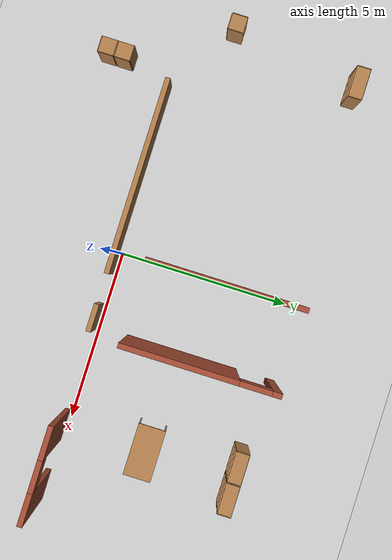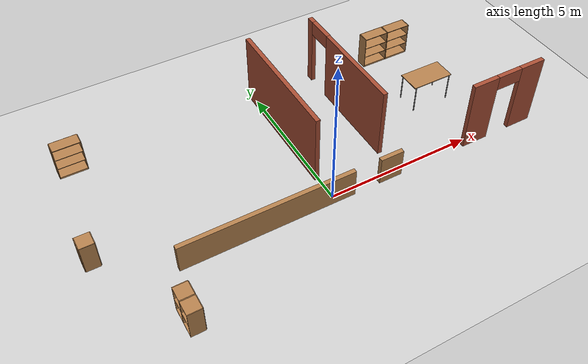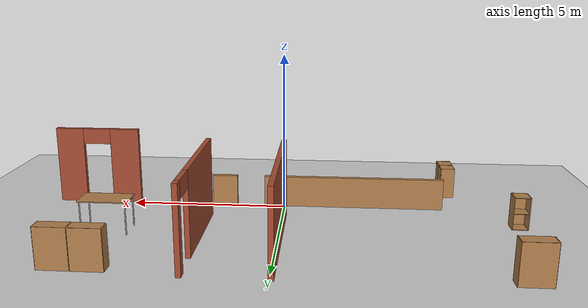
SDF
<sdf version="1.6">
 <world name="default">
  <model name="ground_plane">
   <static>1</static>
   <link name="link">
    <collision name="collision">
     <geometry><plane><normal>0 0 1</normal><size>100 100</size></plane></geometry>
     <surface>
      <contact><collide_bitmask>65535</collide_bitmask></contact>
      <friction><ode><mu>100</mu><mu2>50</mu2></ode></friction>
     </surface>
    </collision>
    <visual name="visual">
     <cast_shadows>0</cast_shadows>
     <geometry><plane><normal>0 0 1</normal><size>100 100</size></plane></geometry>
     <material>
      <script><uri>file://media/materials/scripts/gazebo.material</uri><name>Gazebo/Grey</name></script>
     </material>
    </visual>
   </link>
  </model>
  <model name="escort_house">
   <link name="Wall_101">
    <pose>-0.05 3.1 0 0 0 -1.5708</pose>
    <visual name="Wall_101_Visual">
     <pose>0 0 1.25 0 -0 0</pose>
     <geometry><box><size>4.5 0.15 2.5</size></box></geometry>
     <material>
      <script><uri>file://media/materials/scripts/gazebo.material</uri><name>Gazebo/Bricks</name></script>
      <ambient>1 1 1 1</ambient>
      <diffuse>1 1 1 1</diffuse>
      <specular>0.2 0.2 0.2 1</specular>
      <emissive>0 0 0 1</emissive>
     </material>
    </visual>
    <collision name="Wall_101_Collision">
     <pose>0 0 1.25 0 -0 0</pose>
     <geometry><box><size>4.5 0.15 2.5</size></box></geometry>
     <surface>
      <friction>
       <ode><mu>1</mu><mu2>1</mu2><fdir1>0 0 0</fdir1><slip1>0</slip1><slip2>0</slip2></ode>
       <torsional>
        <coefficient>1</coefficient>
        <patch_radius>0</patch_radius>
        <surface_radius>0</surface_radius>
        <use_patch_radius>1</use_patch_radius>
        <ode><slip>0</slip></ode>
       </torsional>
      </friction>
      <bounce><restitution_coefficient>0</restitution_coefficient><threshold>1e+06</threshold></bounce>
      <contact>
       <collide_without_contact>0</collide_without_contact>
       <collide_without_contact_bitmask>1</collide_without_contact_bitmask>
       <collide_bitmask>1</collide_bitmask>
       <ode>
        <soft_cfm>0</soft_cfm>
        <soft_erp>0.2</soft_erp>
        <kp>1e+13</kp>
        <kd>1</kd>
        <max_vel>0.01</max_vel>
        <min_depth>0</min_depth>
       </ode>
       <bullet>
        <split_impulse>1</split_impulse>
        <split_impulse_penetration_threshold>-0.01</split_impulse_penetration_threshold>
        <soft_cfm>0</soft_cfm>
        <soft_erp>0.2</soft_erp>
        <kp>1e+13</kp>
        <kd>1</kd>
       </bullet>
      </contact>
     </surface>
    </collision>
   </link>
   <link name="Wall_104">
    <pose>2.3 3.1 0 0 -0 1.5708</pose>
    <visual name="Wall_104_Visual_1">
     <pose>2.11625 0 1.25 0 -0 0</pose>
     <geometry><box><size>0.267504 0.15 2.5</size></box></geometry>
     <material>
      <script><uri>file://media/materials/scripts/gazebo.material</uri><name>Gazebo/Bricks</name></script>
      <ambient>1 1 1 1</ambient>
      <diffuse>1 1 1 1</diffuse>
      <specular>0.2 0.2 0.2 1</specular>
      <emissive>0 0 0 1</emissive>
     </material>
    </visual>
    <visual name="Wall_104_Visual_2">
     <pose>1.5325 0 2.25 0 -0 0</pose>
     <geometry><box><size>0.9 0.15 0.5</size></box></geometry>
     <material>
      <script><uri>file://media/materials/scripts/gazebo.material</uri><name>Gazebo/Bricks</name></script>
      <ambient>1 1 1 1</ambient>
      <diffuse>1 1 1 1</diffuse>
      <specular>0.2 0.2 0.2 1</specular>
      <emissive>0 0 0 1</emissive>
     </material>
    </visual>
    <visual name="Wall_104_Visual_0">
     <pose>-0.583752 0 1.25 0 -0 0</pose>
     <geometry><box><size>3.3325 0.15 2.5</size></box></geometry>
     <material>
      <script><uri>file://media/materials/scripts/gazebo.material</uri><name>Gazebo/Bricks</name></script>
      <ambient>1 1 1 1</ambient>
      <diffuse>1 1 1 1</diffuse>
      <specular>0.2 0.2 0.2 1</specular>
      <emissive>0 0 0 1</emissive>
     </material>
    </visual>
    <collision name="Wall_104_Collision_1">
     <pose>2.11625 0 1.25 0 -0 0</pose>
     <geometry><box><size>0.267504 0.15 2.5</size></box></geometry>
     <surface>
      <friction>
       <ode><mu>1</mu><mu2>1</mu2><fdir1>0 0 0</fdir1><slip1>0</slip1><slip2>0</slip2></ode>
       <torsional>
        <coefficient>1</coefficient>
        <patch_radius>0</patch_radius>
        <surface_radius>0</surface_radius>
        <use_patch_radius>1</use_patch_radius>
        <ode><slip>0</slip></ode>
       </torsional>
      </friction>
      <bounce><restitution_coefficient>0</restitution_coefficient><threshold>1e+06</threshold></bounce>
      <contact>
       <collide_without_contact>0</collide_without_contact>
       <collide_without_contact_bitmask>1</collide_without_contact_bitmask>
       <collide_bitmask>1</collide_bitmask>
       <ode>
        <soft_cfm>0</soft_cfm>
        <soft_erp>0.2</soft_erp>
        <kp>1e+13</kp>
        <kd>1</kd>
        <max_vel>0.01</max_vel>
        <min_depth>0</min_depth>
       </ode>
       <bullet>
        <split_impulse>1</split_impulse>
        <split_impulse_penetration_threshold>-0.01</split_impulse_penetration_threshold>
        <soft_cfm>0</soft_cfm>
        <soft_erp>0.2</soft_erp>
        <kp>1e+13</kp>
        <kd>1</kd>
       </bullet>
      </contact>
     </surface>
    </collision>
    <collision name="Wall_104_Collision_2">
     <pose>1.5325 0 2.25 0 -0 0</pose>
     <geometry><box><size>0.9 0.15 0.5</size></box></geometry>
     <surface>
      <friction>
       <ode><mu>1</mu><mu2>1</mu2><fdir1>0 0 0</fdir1><slip1>0</slip1><slip2>0</slip2></ode>
       <torsional>
        <coefficient>1</coefficient>
        <patch_radius>0</patch_radius>
        <surface_radius>0</surface_radius>
        <use_patch_radius>1</use_patch_radius>
        <ode><slip>0</slip></ode>
       </torsional>
      </friction>
      <bounce><restitution_coefficient>0</restitution_coefficient><threshold>1e+06</threshold></bounce>
      <contact>
       <collide_without_contact>0</collide_without_contact>
       <collide_without_contact_bitmask>1</collide_without_contact_bitmask>
       <collide_bitmask>1</collide_bitmask>
       <ode>
        <soft_cfm>0</soft_cfm>
        <soft_erp>0.2</soft_erp>
        <kp>1e+13</kp>
        <kd>1</kd>
        <max_vel>0.01</max_vel>
        <min_depth>0</min_depth>
       </ode>
       <bullet>
        <split_impulse>1</split_impulse>
        <split_impulse_penetration_threshold>-0.01</split_impulse_penetration_threshold>
        <soft_cfm>0</soft_cfm>
        <soft_erp>0.2</soft_erp>
        <kp>1e+13</kp>
        <kd>1</kd>
       </bullet>
      </contact>
     </surface>
    </collision>
    <collision name="Wall_104_Collision_0">
     <pose>-0.583752 0 1.25 0 -0 0</pose>
     <geometry><box><size>3.3325 0.15 2.5</size></box></geometry>
     <surface>
      <friction>
       <ode><mu>1</mu><mu2>1</mu2><fdir1>0 0 0</fdir1><slip1>0</slip1><slip2>0</slip2></ode>
       <torsional>
        <coefficient>1</coefficient>
        <patch_radius>0</patch_radius>
        <surface_radius>0</surface_radius>
        <use_patch_radius>1</use_patch_radius>
        <ode><slip>0</slip></ode>
       </torsional>
      </friction>
      <bounce><restitution_coefficient>0</restitution_coefficient><threshold>1e+06</threshold></bounce>
      <contact>
       <collide_without_contact>0</collide_without_contact>
       <collide_without_contact_bitmask>1</collide_without_contact_bitmask>
       <collide_bitmask>1</collide_bitmask>
       <ode>
        <soft_cfm>0</soft_cfm>
        <soft_erp>0.2</soft_erp>
        <kp>1e+13</kp>
        <kd>1</kd>
        <max_vel>0.01</max_vel>
        <min_depth>0</min_depth>
       </ode>
       <bullet>
        <split_impulse>1</split_impulse>
        <split_impulse_penetration_threshold>-0.01</split_impulse_penetration_threshold>
        <soft_cfm>0</soft_cfm>
        <soft_erp>0.2</soft_erp>
        <kp>1e+13</kp>
        <kd>1</kd>
       </bullet>
      </contact>
     </surface>
    </collision>
   </link>
   <link name="Wall_106">
    <pose>6.2 -0.175 0 0 -0 0</pose>
    <visual name="Wall_106_Visual_1">
     <pose>0.922235 0 1.25 0 -0 0</pose>
     <geometry><box><size>0.905529 0.15 2.5</size></box></geometry>
     <material>
      <script><uri>file://media/materials/scripts/gazebo.material</uri><name>Gazebo/Bricks</name></script>
      <ambient>1 1 1 1</ambient>
      <diffuse>1 1 1 1</diffuse>
      <specular>0.2 0.2 0.2 1</specular>
      <emissive>0 0 0 1</emissive>
     </material>
    </visual>
    <visual name="Wall_106_Visual_2">
     <pose>0.019471 0 2.25 0 -0 0</pose>
     <geometry><box><size>0.9 0.15 0.5</size></box></geometry>
     <material>
      <script><uri>file://media/materials/scripts/gazebo.material</uri><name>Gazebo/Bricks</name></script>
      <ambient>1 1 1 1</ambient>
      <diffuse>1 1 1 1</diffuse>
      <specular>0.2 0.2 0.2 1</specular>
      <emissive>0 0 0 1</emissive>
     </material>
    </visual>
    <visual name="Wall_106_Visual_0">
     <pose>-0.902765 0 1.25 0 -0 0</pose>
     <geometry><box><size>0.944471 0.15 2.5</size></box></geometry>
     <material>
      <script><uri>file://media/materials/scripts/gazebo.material</uri><name>Gazebo/Bricks</name></script>
      <ambient>1 1 1 1</ambient>
      <diffuse>1 1 1 1</diffuse>
      <specular>0.2 0.2 0.2 1</specular>
      <emissive>0 0 0 1</emissive>
     </material>
    </visual>
    <collision name="Wall_106_Collision_1">
     <pose>0.922235 0 1.25 0 -0 0</pose>
     <geometry><box><size>0.905529 0.15 2.5</size></box></geometry>
     <surface>
      <friction>
       <ode><mu>1</mu><mu2>1</mu2><fdir1>0 0 0</fdir1><slip1>0</slip1><slip2>0</slip2></ode>
       <torsional>
        <coefficient>1</coefficient>
        <patch_radius>0</patch_radius>
        <surface_radius>0</surface_radius>
        <use_patch_radius>1</use_patch_radius>
        <ode><slip>0</slip></ode>
       </torsional>
      </friction>
      <bounce><restitution_coefficient>0</restitution_coefficient><threshold>1e+06</threshold></bounce>
      <contact>
       <collide_without_contact>0</collide_without_contact>
       <collide_without_contact_bitmask>1</collide_without_contact_bitmask>
       <collide_bitmask>1</collide_bitmask>
       <ode>
        <soft_cfm>0</soft_cfm>
        <soft_erp>0.2</soft_erp>
        <kp>1e+13</kp>
        <kd>1</kd>
        <max_vel>0.01</max_vel>
        <min_depth>0</min_depth>
       </ode>
       <bullet>
        <split_impulse>1</split_impulse>
        <split_impulse_penetration_threshold>-0.01</split_impulse_penetration_threshold>
        <soft_cfm>0</soft_cfm>
        <soft_erp>0.2</soft_erp>
        <kp>1e+13</kp>
        <kd>1</kd>
       </bullet>
      </contact>
     </surface>
    </collision>
    <collision name="Wall_106_Collision_0">
     <pose>-0.902765 0 1.25 0 -0 0</pose>
     <geometry><box><size>0.944471 0.15 2.5</size></box></geometry>
     <surface>
      <friction>
       <ode><mu>1</mu><mu2>1</mu2><fdir1>0 0 0</fdir1><slip1>0</slip1><slip2>0</slip2></ode>
       <torsional>
        <coefficient>1</coefficient>
        <patch_radius>0</patch_radius>
        <surface_radius>0</surface_radius>
        <use_patch_radius>1</use_patch_radius>
        <ode><slip>0</slip></ode>
       </torsional>
      </friction>
      <bounce><restitution_coefficient>0</restitution_coefficient><threshold>1e+06</threshold></bounce>
      <contact>
       <collide_without_contact>0</collide_without_contact>
       <collide_without_contact_bitmask>1</collide_without_contact_bitmask>
       <collide_bitmask>1</collide_bitmask>
       <ode>
        <soft_cfm>0</soft_cfm>
        <soft_erp>0.2</soft_erp>
        <kp>1e+13</kp>
        <kd>1</kd>
        <max_vel>0.01</max_vel>
        <min_depth>0</min_depth>
       </ode>
       <bullet>
        <split_impulse>1</split_impulse>
        <split_impulse_penetration_threshold>-0.01</split_impulse_penetration_threshold>
        <soft_cfm>0</soft_cfm>
        <soft_erp>0.2</soft_erp>
        <kp>1e+13</kp>
        <kd>1</kd>
       </bullet>
      </contact>
     </surface>
    </collision>
    <collision name="Wall_106_Collision_2">
     <pose>0.019471 0 2.25 0 -0 0</pose>
     <geometry><box><size>0.9 0.15 0.5</size></box></geometry>
     <surface>
      <friction>
       <ode><mu>1</mu><mu2>1</mu2><fdir1>0 0 0</fdir1><slip1>0</slip1><slip2>0</slip2></ode>
       <torsional>
        <coefficient>1</coefficient>
        <patch_radius>0</patch_radius>
        <surface_radius>0</surface_radius>
        <use_patch_radius>1</use_patch_radius>
        <ode><slip>0</slip></ode>
       </torsional>
      </friction>
      <bounce><restitution_coefficient>0</restitution_coefficient><threshold>1e+06</threshold></bounce>
      <contact>
       <collide_without_contact>0</collide_without_contact>
       <collide_without_contact_bitmask>1</collide_without_contact_bitmask>
       <collide_bitmask>1</collide_bitmask>
       <ode>
        <soft_cfm>0</soft_cfm>
        <soft_erp>0.2</soft_erp>
        <kp>1e+13</kp>
        <kd>1</kd>
        <max_vel>0.01</max_vel>
        <min_depth>0</min_depth>
       </ode>
       <bullet>
        <split_impulse>1</split_impulse>
        <split_impulse_penetration_threshold>-0.01</split_impulse_penetration_threshold>
        <soft_cfm>0</soft_cfm>
        <soft_erp>0.2</soft_erp>
        <kp>1e+13</kp>
        <kd>1</kd>
       </bullet>
      </contact>
     </surface>
    </collision>
   </link>
   <link name="Wall_108">
    <pose>-1.37512 -0.17488 0 0 -0 0</pose>
    <visual name="Wall_108_Visual_0">
     <pose>-0.856324 0 0.5 0 -0 0</pose>
     <geometry><box><size>5.78735 0.15 1</size></box></geometry>
     <material>
      <script><uri>file://media/materials/scripts/gazebo.material</uri><name>Gazebo/Wood</name></script>
      <ambient>1 1 1 1</ambient>
      <diffuse>1 1 1 1</diffuse>
      <specular>0.2 0.2 0.2 1</specular>
      <emissive>0 0 0 1</emissive>
     </material>
    </visual>
    <visual name="Wall_108_Visual_1">
     <pose>3.34368 0 0.5 0 -0 0</pose>
     <geometry><box><size>0.812647 0.15 1</size></box></geometry>
     <material>
      <script><uri>file://media/materials/scripts/gazebo.material</uri><name>Gazebo/Wood</name></script>
      <ambient>1 1 1 1</ambient>
      <diffuse>1 1 1 1</diffuse>
      <specular>0.2 0.2 0.2 1</specular>
      <emissive>0 0 0 1</emissive>
     </material>
    </visual>
    <collision name="Wall_108_Collision_1">
     <pose>3.34368 0 0.5 0 -0 0</pose>
     <geometry><box><size>0.812647 0.15 1</size></box></geometry>
     <surface>
      <friction>
       <ode><mu>1</mu><mu2>1</mu2><fdir1>0 0 0</fdir1><slip1>0</slip1><slip2>0</slip2></ode>
       <torsional>
        <coefficient>1</coefficient>
        <patch_radius>0</patch_radius>
        <surface_radius>0</surface_radius>
        <use_patch_radius>1</use_patch_radius>
        <ode><slip>0</slip></ode>
       </torsional>
      </friction>
      <bounce><restitution_coefficient>0</restitution_coefficient><threshold>1e+06</threshold></bounce>
      <contact>
       <collide_without_contact>0</collide_without_contact>
       <collide_without_contact_bitmask>1</collide_without_contact_bitmask>
       <collide_bitmask>1</collide_bitmask>
       <ode>
        <soft_cfm>0</soft_cfm>
        <soft_erp>0.2</soft_erp>
        <kp>1e+13</kp>
        <kd>1</kd>
        <max_vel>0.01</max_vel>
        <min_depth>0</min_depth>
       </ode>
       <bullet>
        <split_impulse>1</split_impulse>
        <split_impulse_penetration_threshold>-0.01</split_impulse_penetration_threshold>
        <soft_cfm>0</soft_cfm>
        <soft_erp>0.2</soft_erp>
        <kp>1e+13</kp>
        <kd>1</kd>
       </bullet>
      </contact>
     </surface>
    </collision>
    <collision name="Wall_108_Collision_0">
     <pose>-0.856324 0 0.5 0 -0 0</pose>
     <geometry><box><size>5.78735 0.15 1</size></box></geometry>
     <surface>
      <friction>
       <ode><mu>1</mu><mu2>1</mu2><fdir1>0 0 0</fdir1><slip1>0</slip1><slip2>0</slip2></ode>
       <torsional>
        <coefficient>1</coefficient>
        <patch_radius>0</patch_radius>
        <surface_radius>0</surface_radius>
        <use_patch_radius>1</use_patch_radius>
        <ode><slip>0</slip></ode>
       </torsional>
      </friction>
      <bounce><restitution_coefficient>0</restitution_coefficient><threshold>1e+06</threshold></bounce>
      <contact>
       <collide_without_contact>0</collide_without_contact>
       <collide_without_contact_bitmask>1</collide_without_contact_bitmask>
       <collide_bitmask>1</collide_bitmask>
       <ode>
        <soft_cfm>0</soft_cfm>
        <soft_erp>0.2</soft_erp>
        <kp>1e+13</kp>
        <kd>1</kd>
        <max_vel>0.01</max_vel>
        <min_depth>0</min_depth>
       </ode>
       <bullet>
        <split_impulse>1</split_impulse>
        <split_impulse_penetration_threshold>-0.01</split_impulse_penetration_threshold>
        <soft_cfm>0</soft_cfm>
        <soft_erp>0.2</soft_erp>
        <kp>1e+13</kp>
        <kd>1</kd>
       </bullet>
      </contact>
     </surface>
    </collision>
   </link>
   <model name="bookshelf">
    <static>1</static>
    <link name="link">
     <inertial><mass>1</mass></inertial>
     <collision name="back">
      <pose>0 0.005 0.6 0 -0 0</pose>
      <geometry><box><size>0.9 0.01 1.2</size></box></geometry>
     </collision>
     <visual name="visual1">
      <pose>0 0.005 0.6 0 -0 0</pose>
      <geometry><box><size>0.9 0.01 1.2</size></box></geometry>
      <material>
       <script><uri>file://media/materials/scripts/gazebo.material</uri><name>Gazebo/Wood</name></script>
      </material>
     </visual>
     <collision name="left_side">
      <pose>0.45 -0.195 0.6 0 -0 0</pose>
      <geometry><box><size>0.02 0.4 1.2</size></box></geometry>
     </collision>
     <visual name="visual2">
      <pose>0.45 -0.195 0.6 0 -0 0</pose>
      <geometry><box><size>0.02 0.4 1.2</size></box></geometry>
      <material>
       <script><uri>file://media/materials/scripts/gazebo.material</uri><name>Gazebo/Wood</name></script>
      </material>
     </visual>
     <collision name="right_side">
      <pose>-0.45 -0.195 0.6 0 -0 0</pose>
      <geometry><box><size>0.02 0.4 1.2</size></box></geometry>
     </collision>
     <visual name="visual3">
      <pose>-0.45 -0.195 0.6 0 -0 0</pose>
      <geometry><box><size>0.02 0.4 1.2</size></box></geometry>
      <material>
       <script><uri>file://media/materials/scripts/gazebo.material</uri><name>Gazebo/Wood</name></script>
      </material>
     </visual>
     <collision name="bottom">
      <pose>0 -0.195 0.03 0 -0 0</pose>
      <geometry><box><size>0.88 0.4 0.06</size></box></geometry>
     </collision>
     <visual name="visual4">
      <pose>0 -0.195 0.03 0 -0 0</pose>
      <geometry><box><size>0.88 0.4 0.06</size></box></geometry>
      <material>
       <script><uri>file://media/materials/scripts/gazebo.material</uri><name>Gazebo/Wood</name></script>
      </material>
     </visual>
     <collision name="top">
      <pose>0 -0.195 1.19 0 -0 0</pose>
      <geometry><box><size>0.88 0.4 0.02</size></box></geometry>
     </collision>
     <visual name="visual5">
      <pose>0 -0.195 1.19 0 -0 0</pose>
      <geometry><box><size>0.88 0.4 0.02</size></box></geometry>
      <material>
       <script><uri>file://media/materials/scripts/gazebo.material</uri><name>Gazebo/Wood</name></script>
      </material>
     </visual>
     <collision name="low_shelf">
      <pose>0 -0.195 0.43 0 -0 0</pose>
      <geometry><box><size>0.88 0.4 0.02</size></box></geometry>
     </collision>
     <visual name="visual6">
      <pose>0 -0.195 0.43 0 -0 0</pose>
      <geometry><box><size>0.88 0.4 0.02</size></box></geometry>
      <material>
       <script><uri>file://media/materials/scripts/gazebo.material</uri><name>Gazebo/Wood</name></script>
      </material>
     </visual>
     <collision name="high_shelf">
      <pose>0 -0.195 0.8 0 -0 0</pose>
      <geometry><box><size>0.88 0.4 0.02</size></box></geometry>
     </collision>
     <visual name="visual7">
      <pose>0 -0.195 0.8 0 -0 0</pose>
      <geometry><box><size>0.88 0.4 0.02</size></box></geometry>
      <material>
       <script><uri>file://media/materials/scripts/gazebo.material</uri><name>Gazebo/Wood</name></script>
      </material>
     </visual>
    </link>
    <pose>-6.54397 5.19486 -0 0 -0 0</pose>
   </model>
   <model name="bookshelf_0">
    <static>1</static>
    <link name="link">
     <inertial><mass>1</mass></inertial>
     <collision name="back">
      <pose>0 0.005 0.6 0 -0 0</pose>
      <geometry><box><size>0.9 0.01 1.2</size></box></geometry>
     </collision>
     <visual name="visual1">
      <pose>0 0.005 0.6 0 -0 0</pose>
      <geometry><box><size>0.9 0.01 1.2</size></box></geometry>
      <material>
       <script><uri>file://media/materials/scripts/gazebo.material</uri><name>Gazebo/Wood</name></script>
      </material>
     </visual>
     <collision name="left_side">
      <pose>0.45 -0.195 0.6 0 -0 0</pose>
      <geometry><box><size>0.02 0.4 1.2</size></box></geometry>
     </collision>
     <visual name="visual2">
      <pose>0.45 -0.195 0.6 0 -0 0</pose>
      <geometry><box><size>0.02 0.4 1.2</size></box></geometry>
      <material>
       <script><uri>file://media/materials/scripts/gazebo.material</uri><name>Gazebo/Wood</name></script>
      </material>
     </visual>
     <collision name="right_side">
      <pose>-0.45 -0.195 0.6 0 -0 0</pose>
      <geometry><box><size>0.02 0.4 1.2</size></box></geometry>
     </collision>
     <visual name="visual3">
      <pose>-0.45 -0.195 0.6 0 -0 0</pose>
      <geometry><box><size>0.02 0.4 1.2</size></box></geometry>
      <material>
       <script><uri>file://media/materials/scripts/gazebo.material</uri><name>Gazebo/Wood</name></script>
      </material>
     </visual>
     <collision name="bottom">
      <pose>0 -0.195 0.03 0 -0 0</pose>
      <geometry><box><size>0.88 0.4 0.06</size></box></geometry>
     </collision>
     <visual name="visual4">
      <pose>0 -0.195 0.03 0 -0 0</pose>
      <geometry><box><size>0.88 0.4 0.06</size></box></geometry>
      <material>
       <script><uri>file://media/materials/scripts/gazebo.material</uri><name>Gazebo/Wood</name></script>
      </material>
     </visual>
     <collision name="top">
      <pose>0 -0.195 1.19 0 -0 0</pose>
      <geometry><box><size>0.88 0.4 0.02</size></box></geometry>
     </collision>
     <visual name="visual5">
      <pose>0 -0.195 1.19 0 -0 0</pose>
      <geometry><box><size>0.88 0.4 0.02</size></box></geometry>
      <material>
       <script><uri>file://media/materials/scripts/gazebo.material</uri><name>Gazebo/Wood</name></script>
      </material>
     </visual>
     <collision name="low_shelf">
      <pose>0 -0.195 0.43 0 -0 0</pose>
      <geometry><box><size>0.88 0.4 0.02</size></box></geometry>
     </collision>
     <visual name="visual6">
      <pose>0 -0.195 0.43 0 -0 0</pose>
      <geometry><box><size>0.88 0.4 0.02</size></box></geometry>
      <material>
       <script><uri>file://media/materials/scripts/gazebo.material</uri><name>Gazebo/Wood</name></script>
      </material>
     </visual>
     <collision name="high_shelf">
      <pose>0 -0.195 0.8 0 -0 0</pose>
      <geometry><box><size>0.88 0.4 0.02</size></box></geometry>
     </collision>
     <visual name="visual7">
      <pose>0 -0.195 0.8 0 -0 0</pose>
      <geometry><box><size>0.88 0.4 0.02</size></box></geometry>
      <material>
       <script><uri>file://media/materials/scripts/gazebo.material</uri><name>Gazebo/Wood</name></script>
      </material>
     </visual>
    </link>
    <pose>4.72359 5.17921 0 0 -0 0</pose>
   </model>
   <model name="bookshelf_1">
    <static>1</static>
    <link name="link">
     <inertial><mass>1</mass></inertial>
     <collision name="back">
      <pose>0 0.005 0.6 0 -0 0</pose>
      <geometry><box><size>0.9 0.01 1.2</size></box></geometry>
     </collision>
     <visual name="visual1">
      <pose>0 0.005 0.6 0 -0 0</pose>
      <geometry><box><size>0.9 0.01 1.2</size></box></geometry>
      <material>
       <script><uri>file://media/materials/scripts/gazebo.material</uri><name>Gazebo/Wood</name></script>
      </material>
     </visual>
     <collision name="left_side">
      <pose>0.45 -0.195 0.6 0 -0 0</pose>
      <geometry><box><size>0.02 0.4 1.2</size></box></geometry>
     </collision>
     <visual name="visual2">
      <pose>0.45 -0.195 0.6 0 -0 0</pose>
      <geometry><box><size>0.02 0.4 1.2</size></box></geometry>
      <material>
       <script><uri>file://media/materials/scripts/gazebo.material</uri><name>Gazebo/Wood</name></script>
      </material>
     </visual>
     <collision name="right_side">
      <pose>-0.45 -0.195 0.6 0 -0 0</pose>
      <geometry><box><size>0.02 0.4 1.2</size></box></geometry>
     </collision>
     <visual name="visual3">
      <pose>-0.45 -0.195 0.6 0 -0 0</pose>
      <geometry><box><size>0.02 0.4 1.2</size></box></geometry>
      <material>
       <script><uri>file://media/materials/scripts/gazebo.material</uri><name>Gazebo/Wood</name></script>
      </material>
     </visual>
     <collision name="bottom">
      <pose>0 -0.195 0.03 0 -0 0</pose>
      <geometry><box><size>0.88 0.4 0.06</size></box></geometry>
     </collision>
     <visual name="visual4">
      <pose>0 -0.195 0.03 0 -0 0</pose>
      <geometry><box><size>0.88 0.4 0.06</size></box></geometry>
      <material>
       <script><uri>file://media/materials/scripts/gazebo.material</uri><name>Gazebo/Wood</name></script>
      </material>
     </visual>
     <collision name="top">
      <pose>0 -0.195 1.19 0 -0 0</pose>
      <geometry><box><size>0.88 0.4 0.02</size></box></geometry>
     </collision>
     <visual name="visual5">
      <pose>0 -0.195 1.19 0 -0 0</pose>
      <geometry><box><size>0.88 0.4 0.02</size></box></geometry>
      <material>
       <script><uri>file://media/materials/scripts/gazebo.material</uri><name>Gazebo/Wood</name></script>
      </material>
     </visual>
     <collision name="low_shelf">
      <pose>0 -0.195 0.43 0 -0 0</pose>
      <geometry><box><size>0.88 0.4 0.02</size></box></geometry>
     </collision>
     <visual name="visual6">
      <pose>0 -0.195 0.43 0 -0 0</pose>
      <geometry><box><size>0.88 0.4 0.02</size></box></geometry>
      <material>
       <script><uri>file://media/materials/scripts/gazebo.material</uri><name>Gazebo/Wood</name></script>
      </material>
     </visual>
     <collision name="high_shelf">
      <pose>0 -0.195 0.8 0 -0 0</pose>
      <geometry><box><size>0.88 0.4 0.02</size></box></geometry>
     </collision>
     <visual name="visual7">
      <pose>0 -0.195 0.8 0 -0 0</pose>
      <geometry><box><size>0.88 0.4 0.02</size></box></geometry>
      <material>
       <script><uri>file://media/materials/scripts/gazebo.material</uri><name>Gazebo/Wood</name></script>
      </material>
     </visual>
    </link>
    <pose>5.64449 5.17912 0 0 -0 0</pose>
   </model>
   <model name="cabinet">
    <static>1</static>
    <link name="cabinet_bottom_plate">
     <inertial>
      <pose>0 0 -1 0 -0 0</pose>
      <inertia><ixx>2.05</ixx><ixy>0</ixy><ixz>0</ixz><iyy>2.05</iyy><iyz>0</iyz><izz>2.05</izz></inertia>
      <mass>25</mass>
     </inertial>
     <collision name="cabinet_bottom_plate_geom">
      <pose>0 0 0.01 0 -0 0</pose>
      <geometry><box><size>0.45 0.45 0.02</size></box></geometry>
     </collision>
     <visual name="cabinet_bottom_plate_geom_visual">
      <pose>0 0 0.01 0 -0 0</pose>
      <geometry><box><size>0.45 0.45 0.02</size></box></geometry>
      <material>
       <script><uri>file://media/materials/scripts/gazebo.material</uri><name>Gazebo/Wood</name></script>
      </material>
     </visual>
     <collision name="cabinet_bottom_plate_geom_cabinet_back_plate">
      <pose>0.235 0 0.51 0 -0 0</pose>
      <geometry><box><size>0.02 0.45 1.02</size></box></geometry>
     </collision>
     <visual name="cabinet_bottom_plate_geom_cabinet_back_plate_visual">
      <pose>0.235 0 0.51 0 -0 0</pose>
      <geometry><box><size>0.02 0.45 1.02</size></box></geometry>
      <material>
       <script><uri>file://media/materials/scripts/gazebo.material</uri><name>Gazebo/Wood</name></script>
      </material>
     </visual>
     <collision name="cabinet_bottom_plate_geom_cabinet_left_plate">
      <pose>0 0.235 0.51 0 -0 0</pose>
      <geometry><box><size>0.45 0.02 1.02</size></box></geometry>
     </collision>
     <visual name="cabinet_bottom_plate_geom_cabinet_left_plate_visual">
      <pose>0 0.235 0.51 0 -0 0</pose>
      <geometry><box><size>0.45 0.02 1.02</size></box></geometry>
      <material>
       <script><uri>file://media/materials/scripts/gazebo.material</uri><name>Gazebo/Wood</name></script>
      </material>
     </visual>
     <collision name="cabinet_bottom_plate_geom_cabinet_middle_plate">
      <pose>0 0 0.51 0 -0 0</pose>
      <geometry><box><size>0.45 0.45 0.02</size></box></geometry>
     </collision>
     <visual name="cabinet_bottom_plate_geom_cabinet_middle_plate_visual">
      <pose>0 0 0.51 0 -0 0</pose>
      <geometry><box><size>0.45 0.45 0.02</size></box></geometry>
      <material>
       <script><uri>file://media/materials/scripts/gazebo.material</uri><name>Gazebo/Wood</name></script>
      </material>
     </visual>
     <collision name="cabinet_bottom_plate_geom_cabinet_right_plate">
      <pose>0 -0.235 0.51 0 -0 0</pose>
      <geometry><box><size>0.45 0.02 1.02</size></box></geometry>
     </collision>
     <visual name="cabinet_bottom_plate_geom_cabinet_right_plate_visual">
      <pose>0 -0.235 0.51 0 -0 0</pose>
      <geometry><box><size>0.45 0.02 1.02</size></box></geometry>
      <material>
       <script><uri>file://media/materials/scripts/gazebo.material</uri><name>Gazebo/Wood</name></script>
      </material>
     </visual>
     <collision name="cabinet_bottom_plate_geom_cabinet_top_plate">
      <pose>0 0 1.01 0 -0 0</pose>
      <geometry><box><size>0.45 0.45 0.02</size></box></geometry>
     </collision>
     <visual name="cabinet_bottom_plate_geom_cabinet_top_plate_visual">
      <pose>0 0 1.01 0 -0 0</pose>
      <geometry><box><size>0.45 0.45 0.02</size></box></geometry>
      <material>
       <script><uri>file://media/materials/scripts/gazebo.material</uri><name>Gazebo/Wood</name></script>
      </material>
     </visual>
    </link>
    <pose>-5.472 -1.57624 0 0 -0 0</pose>
   </model>
   <model name="cabinet_0">
    <static>1</static>
    <link name="cabinet_bottom_plate">
     <inertial>
      <pose>0 0 -1 0 -0 0</pose>
      <inertia><ixx>2.05</ixx><ixy>0</ixy><ixz>0</ixz><iyy>2.05</iyy><iyz>0</iyz><izz>2.05</izz></inertia>
      <mass>25</mass>
     </inertial>
     <collision name="cabinet_bottom_plate_geom">
      <pose>0 0 0.01 0 -0 0</pose>
      <geometry><box><size>0.45 0.45 0.02</size></box></geometry>
     </collision>
     <visual name="cabinet_bottom_plate_geom_visual">
      <pose>0 0 0.01 0 -0 0</pose>
      <geometry><box><size>0.45 0.45 0.02</size></box></geometry>
      <material>
       <script><uri>file://media/materials/scripts/gazebo.material</uri><name>Gazebo/Wood</name></script>
      </material>
     </visual>
     <collision name="cabinet_bottom_plate_geom_cabinet_back_plate">
      <pose>0.235 0 0.51 0 -0 0</pose>
      <geometry><box><size>0.02 0.45 1.02</size></box></geometry>
     </collision>
     <visual name="cabinet_bottom_plate_geom_cabinet_back_plate_visual">
      <pose>0.235 0 0.51 0 -0 0</pose>
      <geometry><box><size>0.02 0.45 1.02</size></box></geometry>
      <material>
       <script><uri>file://media/materials/scripts/gazebo.material</uri><name>Gazebo/Wood</name></script>
      </material>
     </visual>
     <collision name="cabinet_bottom_plate_geom_cabinet_left_plate">
      <pose>0 0.235 0.51 0 -0 0</pose>
      <geometry><box><size>0.45 0.02 1.02</size></box></geometry>
     </collision>
     <visual name="cabinet_bottom_plate_geom_cabinet_left_plate_visual">
      <pose>0 0.235 0.51 0 -0 0</pose>
      <geometry><box><size>0.45 0.02 1.02</size></box></geometry>
      <material>
       <script><uri>file://media/materials/scripts/gazebo.material</uri><name>Gazebo/Wood</name></script>
      </material>
     </visual>
     <collision name="cabinet_bottom_plate_geom_cabinet_middle_plate">
      <pose>0 0 0.51 0 -0 0</pose>
      <geometry><box><size>0.45 0.45 0.02</size></box></geometry>
     </collision>
     <visual name="cabinet_bottom_plate_geom_cabinet_middle_plate_visual">
      <pose>0 0 0.51 0 -0 0</pose>
      <geometry><box><size>0.45 0.45 0.02</size></box></geometry>
      <material>
       <script><uri>file://media/materials/scripts/gazebo.material</uri><name>Gazebo/Wood</name></script>
      </material>
     </visual>
     <collision name="cabinet_bottom_plate_geom_cabinet_right_plate">
      <pose>0 -0.235 0.51 0 -0 0</pose>
      <geometry><box><size>0.45 0.02 1.02</size></box></geometry>
     </collision>
     <visual name="cabinet_bottom_plate_geom_cabinet_right_plate_visual">
      <pose>0 -0.235 0.51 0 -0 0</pose>
      <geometry><box><size>0.45 0.02 1.02</size></box></geometry>
      <material>
       <script><uri>file://media/materials/scripts/gazebo.material</uri><name>Gazebo/Wood</name></script>
      </material>
     </visual>
     <collision name="cabinet_bottom_plate_geom_cabinet_top_plate">
      <pose>0 0 1.01 0 -0 0</pose>
      <geometry><box><size>0.45 0.45 0.02</size></box></geometry>
     </collision>
     <visual name="cabinet_bottom_plate_geom_cabinet_top_plate_visual">
      <pose>0 0 1.01 0 -0 0</pose>
      <geometry><box><size>0.45 0.45 0.02</size></box></geometry>
      <material>
       <script><uri>file://media/materials/scripts/gazebo.material</uri><name>Gazebo/Wood</name></script>
      </material>
     </visual>
    </link>
    <pose>-5.47289 -2.06545 0 0 -0 0</pose>
   </model>
   <model name="cabinet_1">
    <static>1</static>
    <link name="cabinet_bottom_plate">
     <inertial>
      <pose>0 0 -1 0 -0 0</pose>
      <inertia><ixx>2.05</ixx><ixy>0</ixy><ixz>0</ixz><iyy>2.05</iyy><iyz>0</iyz><izz>2.05</izz></inertia>
      <mass>25</mass>
     </inertial>
     <collision name="cabinet_bottom_plate_geom">
      <pose>0 0 0.01 0 -0 0</pose>
      <geometry><box><size>0.45 0.45 0.02</size></box></geometry>
     </collision>
     <visual name="cabinet_bottom_plate_geom_visual">
      <pose>0 0 0.01 0 -0 0</pose>
      <geometry><box><size>0.45 0.45 0.02</size></box></geometry>
      <material>
       <script><uri>file://media/materials/scripts/gazebo.material</uri><name>Gazebo/Wood</name></script>
      </material>
     </visual>
     <collision name="cabinet_bottom_plate_geom_cabinet_back_plate">
      <pose>0.235 0 0.51 0 -0 0</pose>
      <geometry><box><size>0.02 0.45 1.02</size></box></geometry>
     </collision>
     <visual name="cabinet_bottom_plate_geom_cabinet_back_plate_visual">
      <pose>0.235 0 0.51 0 -0 0</pose>
      <geometry><box><size>0.02 0.45 1.02</size></box></geometry>
      <material>
       <script><uri>file://media/materials/scripts/gazebo.material</uri><name>Gazebo/Wood</name></script>
      </material>
     </visual>
     <collision name="cabinet_bottom_plate_geom_cabinet_left_plate">
      <pose>0 0.235 0.51 0 -0 0</pose>
      <geometry><box><size>0.45 0.02 1.02</size></box></geometry>
     </collision>
     <visual name="cabinet_bottom_plate_geom_cabinet_left_plate_visual">
      <pose>0 0.235 0.51 0 -0 0</pose>
      <geometry><box><size>0.45 0.02 1.02</size></box></geometry>
      <material>
       <script><uri>file://media/materials/scripts/gazebo.material</uri><name>Gazebo/Wood</name></script>
      </material>
     </visual>
     <collision name="cabinet_bottom_plate_geom_cabinet_middle_plate">
      <pose>0 0 0.51 0 -0 0</pose>
      <geometry><box><size>0.45 0.45 0.02</size></box></geometry>
     </collision>
     <visual name="cabinet_bottom_plate_geom_cabinet_middle_plate_visual">
      <pose>0 0 0.51 0 -0 0</pose>
      <geometry><box><size>0.45 0.45 0.02</size></box></geometry>
      <material>
       <script><uri>file://media/materials/scripts/gazebo.material</uri><name>Gazebo/Wood</name></script>
      </material>
     </visual>
     <collision name="cabinet_bottom_plate_geom_cabinet_right_plate">
      <pose>0 -0.235 0.51 0 -0 0</pose>
      <geometry><box><size>0.45 0.02 1.02</size></box></geometry>
     </collision>
     <visual name="cabinet_bottom_plate_geom_cabinet_right_plate_visual">
      <pose>0 -0.235 0.51 0 -0 0</pose>
      <geometry><box><size>0.45 0.02 1.02</size></box></geometry>
      <material>
       <script><uri>file://media/materials/scripts/gazebo.material</uri><name>Gazebo/Wood</name></script>
      </material>
     </visual>
     <collision name="cabinet_bottom_plate_geom_cabinet_top_plate">
      <pose>0 0 1.01 0 -0 0</pose>
      <geometry><box><size>0.45 0.45 0.02</size></box></geometry>
     </collision>
     <visual name="cabinet_bottom_plate_geom_cabinet_top_plate_visual">
      <pose>0 0 1.01 0 -0 0</pose>
      <geometry><box><size>0.45 0.45 0.02</size></box></geometry>
      <material>
       <script><uri>file://media/materials/scripts/gazebo.material</uri><name>Gazebo/Wood</name></script>
      </material>
     </visual>
    </link>
    <pose>-7.18363 1.24799 0 0 0 -1.5708</pose>
   </model>
   <static>1</static>
  </model>
  <model name="table_1">
   <static>1</static>
   <link name="link">
    <collision name="surface">
     <pose>0 0 1 0 -0 0</pose>
     <geometry><box><size>1.5 0.8 0.03</size></box></geometry>
     <surface><friction><ode><mu>0.6</mu><mu2>0.6</mu2></ode></friction></surface>
    </collision>
    <visual name="visual1">
     <pose>0 0 1 0 -0 0</pose>
     <geometry><box><size>1.5 0.8 0.03</size></box></geometry>
     <material>
      <script><uri>file://media/materials/scripts/gazebo.material</uri><name>Gazebo/Wood</name></script>
     </material>
    </visual>
    <collision name="front_left_leg">
     <pose>0.68 0.38 0.5 0 -0 0</pose>
     <geometry><cylinder><radius>0.02</radius><length>1</length></cylinder></geometry>
    </collision>
    <visual name="front_left_leg">
     <pose>0.68 0.38 0.5 0 -0 0</pose>
     <geometry><cylinder><radius>0.02</radius><length>1</length></cylinder></geometry>
     <material>
      <script><uri>file://media/materials/scripts/gazebo.material</uri><name>Gazebo/Grey</name></script>
     </material>
    </visual>
    <collision name="front_right_leg">
     <pose>0.68 -0.38 0.5 0 -0 0</pose>
     <geometry><cylinder><radius>0.02</radius><length>1</length></cylinder></geometry>
    </collision>
    <visual name="front_right_leg">
     <pose>0.68 -0.38 0.5 0 -0 0</pose>
     <geometry><cylinder><radius>0.02</radius><length>1</length></cylinder></geometry>
     <material>
      <script><uri>file://media/materials/scripts/gazebo.material</uri><name>Gazebo/Grey</name></script>
     </material>
    </visual>
    <collision name="back_right_leg">
     <pose>-0.68 -0.38 0.5 0 -0 0</pose>
     <geometry><cylinder><radius>0.02</radius><length>1</length></cylinder></geometry>
    </collision>
    <visual name="back_right_leg">
     <pose>-0.68 -0.38 0.5 0 -0 0</pose>
     <geometry><cylinder><radius>0.02</radius><length>1</length></cylinder></geometry>
     <material>
      <script><uri>file://media/materials/scripts/gazebo.material</uri><name>Gazebo/Grey</name></script>
     </material>
    </visual>
    <collision name="back_left_leg">
     <pose>-0.68 0.38 0.5 0 -0 0</pose>
     <geometry><cylinder><radius>0.02</radius><length>1</length></cylinder></geometry>
    </collision>
    <visual name="back_left_leg">
     <pose>-0.68 0.38 0.5 0 -0 0</pose>
     <geometry><cylinder><radius>0.02</radius><length>1</length></cylinder></geometry>
     <material>
      <script><uri>file://media/materials/scripts/gazebo.material</uri><name>Gazebo/Grey</name></script>
     </material>
    </visual>
   </link>
   <pose>5.13444 2.35789 0 0 -0 0</pose>
  </model>
 </world>
</sdf>
